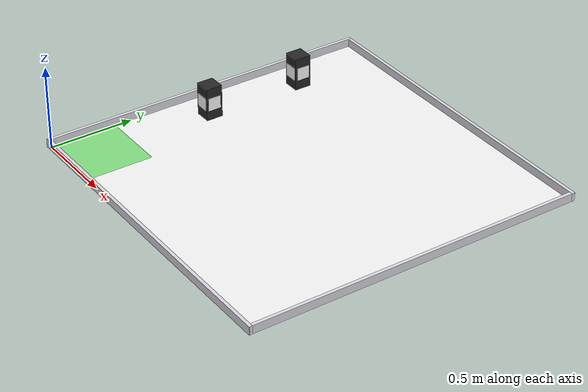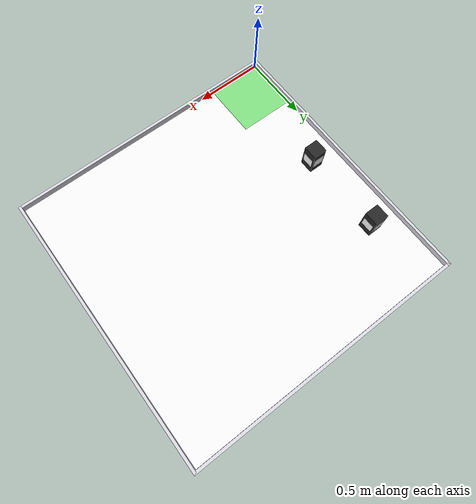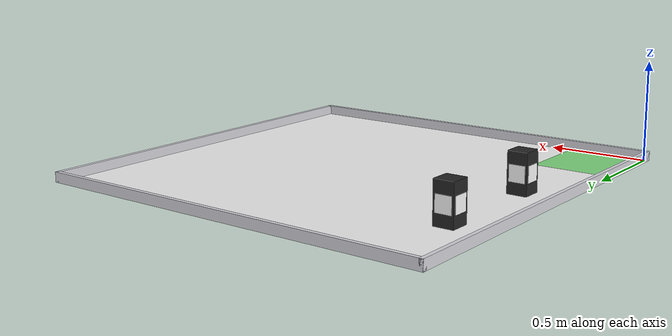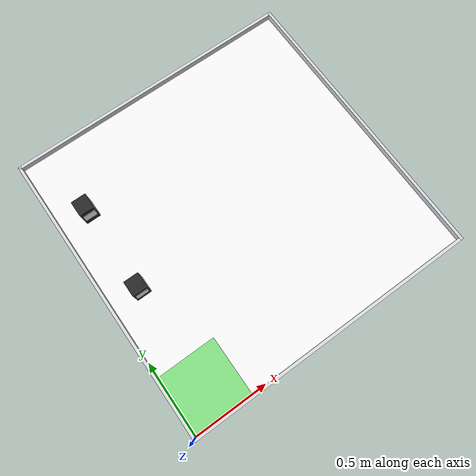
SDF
<?xml version="1.0" ?>
<sdf version="1.8">
  <world name="mdp_task2_arena">
    <physics name="1ms" type="ignored">
      <max_step_size>0.002</max_step_size>
      <real_time_factor>1.0</real_time_factor>
    </physics>

    <plugin filename="gz-sim-physics-system" name="gz::sim::systems::Physics"/>
    <plugin filename="gz-sim-sensors-system" name="gz::sim::systems::Sensors">
      <render_engine>ogre2</render_engine>
    </plugin>
    <plugin filename="gz-sim-scene-broadcaster-system" name="gz::sim::systems::SceneBroadcaster"/>
    <plugin filename="gz-sim-user-commands-system" name="gz::sim::systems::UserCommands"/>

    <light type="directional" name="sun">
      <cast_shadows>true</cast_shadows>
      <pose>1.0 1.0 10.0 0 0 0</pose>
      <diffuse>0.9 0.9 0.9 1</diffuse>
      <specular>0.3 0.3 0.3 1</specular>
      <direction>-0.15 -0.15 -1.0</direction>
    </light>

    <scene>
      <ambient>0.65 0.65 0.65 1.0</ambient>
      <background>0.82 0.86 0.90 1.0</background>
      <shadows>true</shadows>
    </scene>

    <!-- Floor (2.0m x 2.0m with 10cm grid lines and 40cm start carpark) -->
    <model name="arena_floor">
      <static>true</static>
      <link name="floor_link">
        <collision name="floor_collision">
          <geometry>
            <plane><normal>0 0 1</normal><size>10.0 10.0</size></plane>
          </geometry>
          <surface>
            <friction><ode><mu>1.0</mu><mu2>1.0</mu2></ode></friction>
          </surface>
        </collision>
        <visual name="arena_surface">
          <pose>1.0 1.0 0.0005 0 0 0</pose>
          <geometry><box><size>2.0 2.0 0.001</size></box></geometry>
          <material>
            <ambient>0.96 0.96 0.96 1</ambient><diffuse>0.96 0.96 0.96 1</diffuse>
            <pbr><metal><albedo_map>materials/textures/arena_grid.png</albedo_map></metal></pbr>
          </material>
        </visual>
        <visual name="start_zone_carpark">
          <pose>0.20 0.20 0.0012 0 0 0</pose>
          <geometry><box><size>0.40 0.40 0.0005</size></box></geometry>
          <material><ambient>0.25 0.85 0.25 0.6</ambient><diffuse>0.25 0.85 0.25 0.6</diffuse></material>
        </visual>
      </link>
    </model>

    <!-- Perimeter Boundary (2.0m x 2.0m, height 0.05m = 5cm, thickness 0.02m) -->
    <model name="boundary_walls">
      <static>true</static>
      <link name="walls_link">
        <collision name="south_wall_col"><pose>1.0 -0.01 0.025 0 0 0</pose><geometry><box><size>2.04 0.02 0.05</size></box></geometry></collision>
        <visual name="south_wall_vis"><pose>1.0 -0.01 0.025 0 0 0</pose><geometry><box><size>2.04 0.02 0.05</size></box></geometry><material><ambient>0.85 0.85 0.88 1</ambient><diffuse>0.85 0.85 0.88 1</diffuse></material></visual>

        <collision name="north_wall_col"><pose>1.0 2.01 0.025 0 0 0</pose><geometry><box><size>2.04 0.02 0.05</size></box></geometry></collision>
        <visual name="north_wall_vis"><pose>1.0 2.01 0.025 0 0 0</pose><geometry><box><size>2.04 0.02 0.05</size></box></geometry><material><ambient>0.85 0.85 0.88 1</ambient><diffuse>0.85 0.85 0.88 1</diffuse></material></visual>

        <collision name="west_wall_col"><pose>-0.01 1.0 0.025 0 0 0</pose><geometry><box><size>0.02 2.04 0.05</size></box></geometry></collision>
        <visual name="west_wall_vis"><pose>-0.01 1.0 0.025 0 0 0</pose><geometry><box><size>0.02 2.04 0.05</size></box></geometry><material><ambient>0.85 0.85 0.88 1</ambient><diffuse>0.85 0.85 0.88 1</diffuse></material></visual>

        <collision name="east_wall_col"><pose>2.01 1.0 0.025 0 0 0</pose><geometry><box><size>0.02 2.04 0.05</size></box></geometry></collision>
        <visual name="east_wall_vis"><pose>2.01 1.0 0.025 0 0 0</pose><geometry><box><size>0.02 2.04 0.05</size></box></geometry><material><ambient>0.85 0.85 0.88 1</ambient><diffuse>0.85 0.85 0.88 1</diffuse></material></visual>
      </link>
    </model>

    <!-- ================= TASK 2 (FASTEST CAR SPRINT) OBSTACLES ================= -->
    <!-- Per MDP Briefing Slide 16-17: 2 obstacles directly in front of carpark lane, 60cm apart -->

    <!-- Obstacle 1: Center (0.20m, 0.90m), Target Face South with Left Arrow (Symbol 39) -->
    <model name="task2_obs_1">
      <static>true</static>
      <pose>0.20 0.90 0.10 0 0 0</pose>
      <link name="link">
        <collision name="col"><geometry><box><size>0.10 0.10 0.20</size></box></geometry></collision>
        <visual name="block_body"><geometry><box><size>0.10 0.10 0.20</size></box></geometry><material><ambient>0.15 0.15 0.15 1</ambient><diffuse>0.15 0.15 0.15 1</diffuse></material></visual>
        <!-- Target Face (South: facing the oncoming car): Left Arrow -->
        <visual name="target_face_arrow_left">
          <pose>0 -0.051 0 1.570796 0 3.14159</pose>
          <geometry><box><size>0.08 0.08 0.002</size></box></geometry>
          <material>
            <ambient>1 1 1 1</ambient><diffuse>1 1 1 1</diffuse>
            <pbr><metal><albedo_map>materials/textures/target_arrow_left.png</albedo_map></metal></pbr>
          </material>
        </visual>
        <!-- Bullseye on North, East, West -->
        <visual name="bullseye_north"><pose>0 0.051 0 1.570796 0 0</pose><geometry><box><size>0.08 0.08 0.002</size></box></geometry><material><ambient>1 1 1 1</ambient><diffuse>1 1 1 1</diffuse><pbr><metal><albedo_map>materials/textures/bullseye.png</albedo_map></metal></pbr></material></visual>
        <visual name="bullseye_east"><pose>0.051 0 0 0 1.570796 0</pose><geometry><box><size>0.08 0.08 0.002</size></box></geometry><material><ambient>1 1 1 1</ambient><diffuse>1 1 1 1</diffuse><pbr><metal><albedo_map>materials/textures/bullseye.png</albedo_map></metal></pbr></material></visual>
        <visual name="bullseye_west"><pose>-0.051 0 0 0 1.570796 3.14159</pose><geometry><box><size>0.08 0.08 0.002</size></box></geometry><material><ambient>1 1 1 1</ambient><diffuse>1 1 1 1</diffuse><pbr><metal><albedo_map>materials/textures/bullseye.png</albedo_map></metal></pbr></material></visual>
      </link>
    </model>

    <!-- Obstacle 2: Center (0.20m, 1.50m) (60cm behind Obs 1), Target Face South with Right Arrow (Symbol 38) -->
    <model name="task2_obs_2">
      <static>true</static>
      <pose>0.20 1.50 0.10 0 0 0</pose>
      <link name="link">
        <collision name="col"><geometry><box><size>0.10 0.10 0.20</size></box></geometry></collision>
        <visual name="block_body"><geometry><box><size>0.10 0.10 0.20</size></box></geometry><material><ambient>0.15 0.15 0.15 1</ambient><diffuse>0.15 0.15 0.15 1</diffuse></material></visual>
        <!-- Target Face (South): Right Arrow -->
        <visual name="target_face_arrow_right">
          <pose>0 -0.051 0 1.570796 0 3.14159</pose>
          <geometry><box><size>0.08 0.08 0.002</size></box></geometry>
          <material>
            <ambient>1 1 1 1</ambient><diffuse>1 1 1 1</diffuse>
            <pbr><metal><albedo_map>materials/textures/target_arrow_right.png</albedo_map></metal></pbr>
          </material>
        </visual>
        <!-- Bullseye on North, East, West -->
        <visual name="bullseye_north"><pose>0 0.051 0 1.570796 0 0</pose><geometry><box><size>0.08 0.08 0.002</size></box></geometry><material><ambient>1 1 1 1</ambient><diffuse>1 1 1 1</diffuse><pbr><metal><albedo_map>materials/textures/bullseye.png</albedo_map></metal></pbr></material></visual>
        <visual name="bullseye_east"><pose>0.051 0 0 0 1.570796 0</pose><geometry><box><size>0.08 0.08 0.002</size></box></geometry><material><ambient>1 1 1 1</ambient><diffuse>1 1 1 1</diffuse><pbr><metal><albedo_map>materials/textures/bullseye.png</albedo_map></metal></pbr></material></visual>
        <visual name="bullseye_west"><pose>-0.051 0 0 0 1.570796 3.14159</pose><geometry><box><size>0.08 0.08 0.002</size></box></geometry><material><ambient>1 1 1 1</ambient><diffuse>1 1 1 1</diffuse><pbr><metal><albedo_map>materials/textures/bullseye.png</albedo_map></metal></pbr></material></visual>
      </link>
    </model>

  </world>
</sdf>
